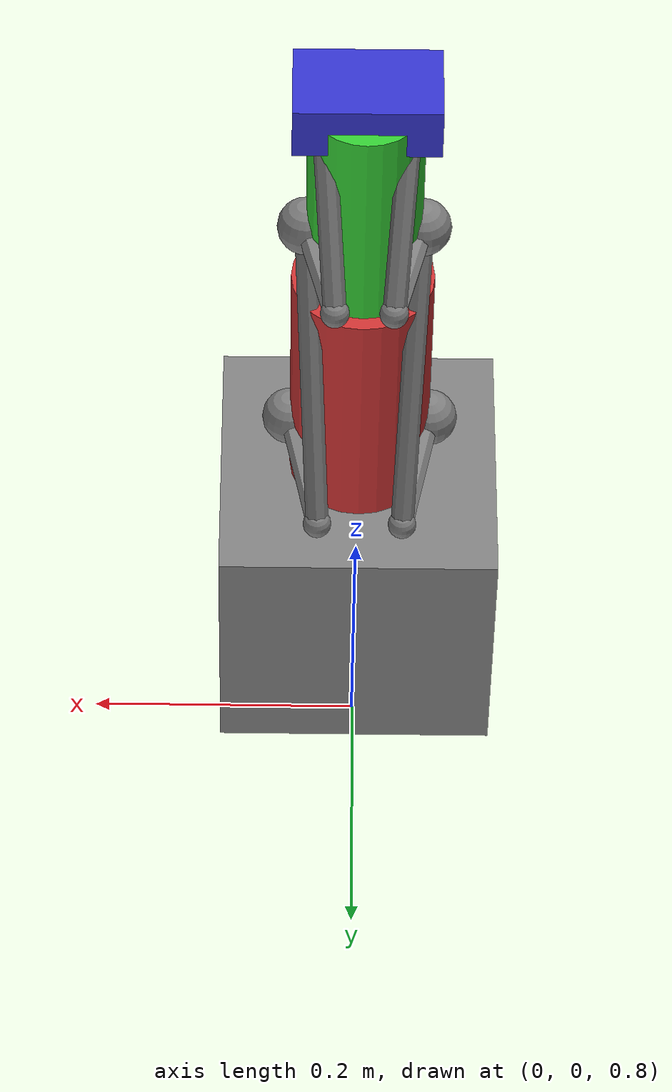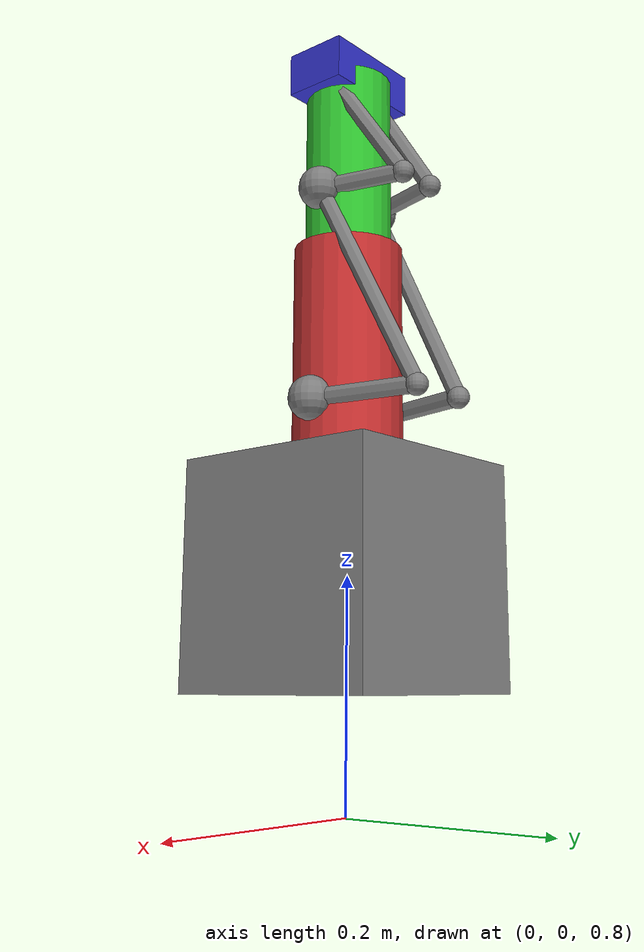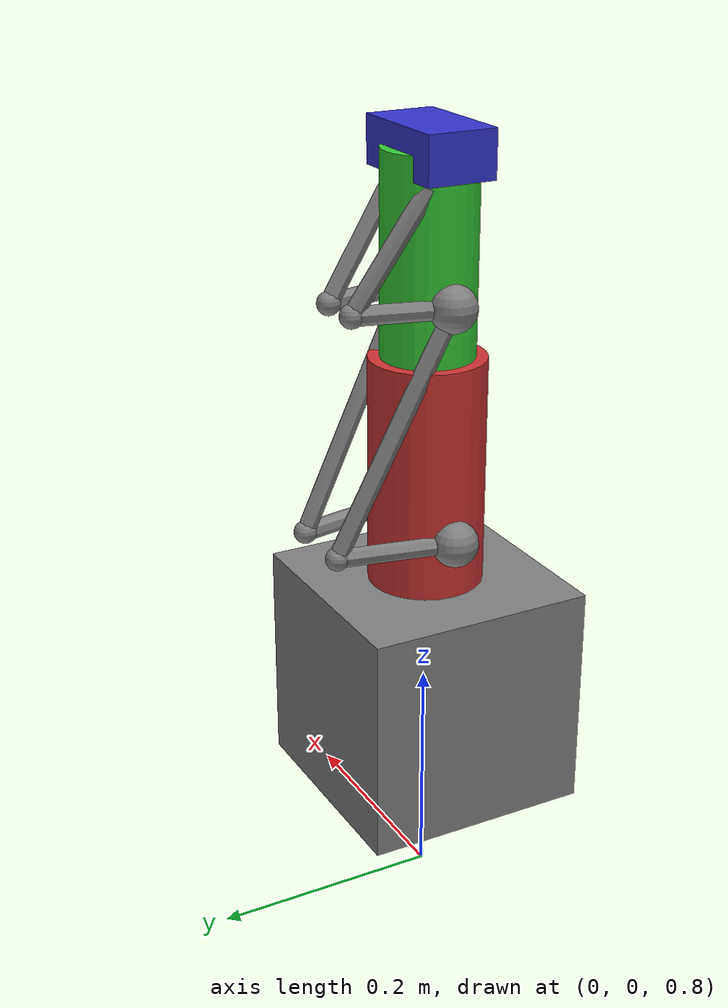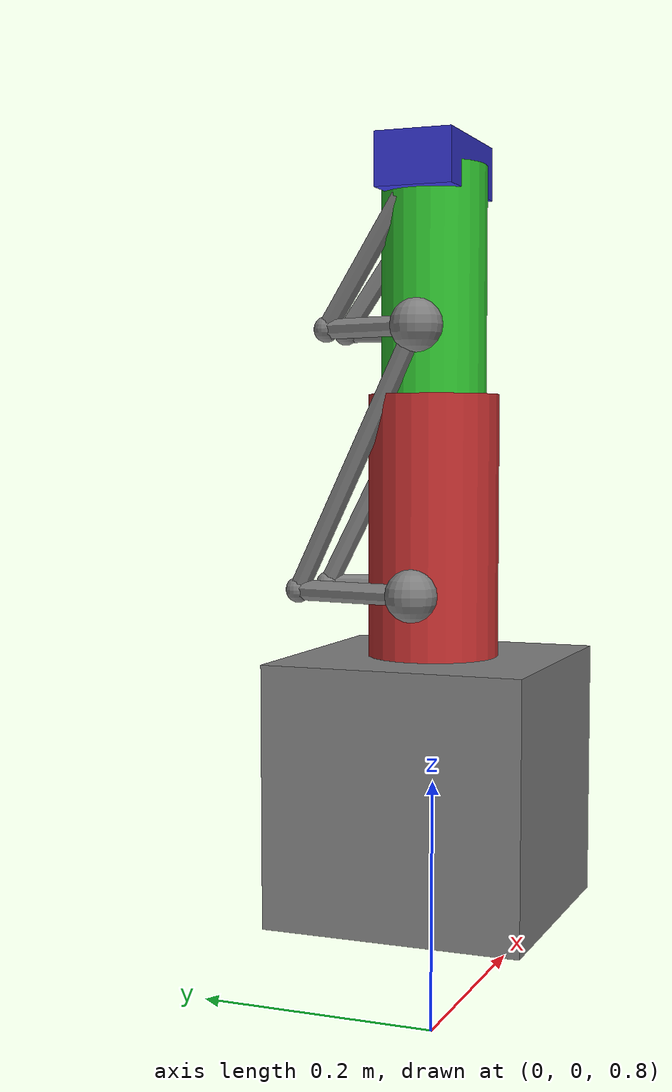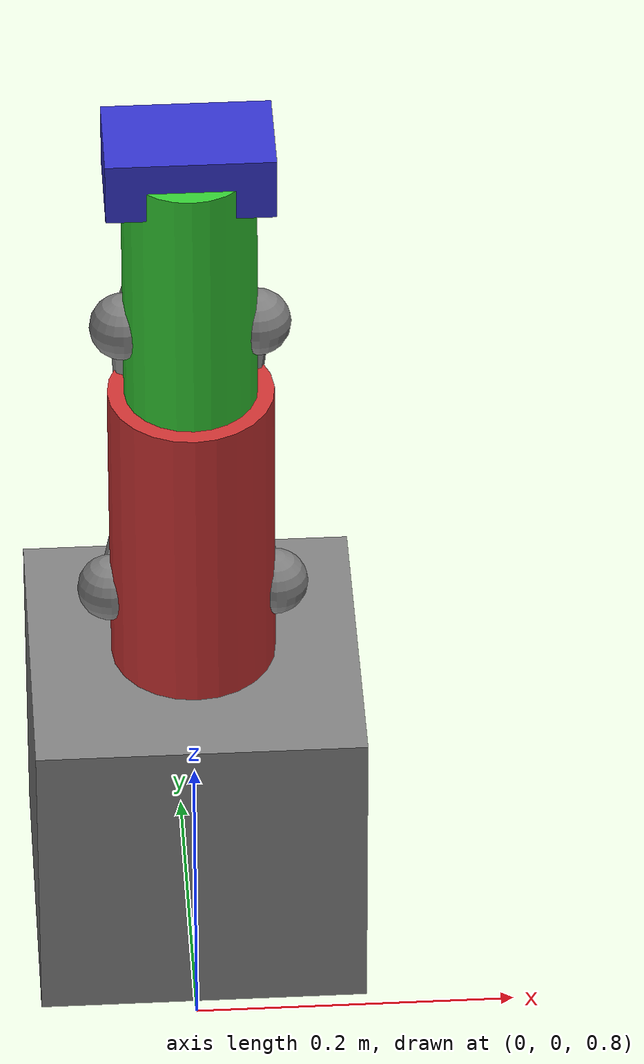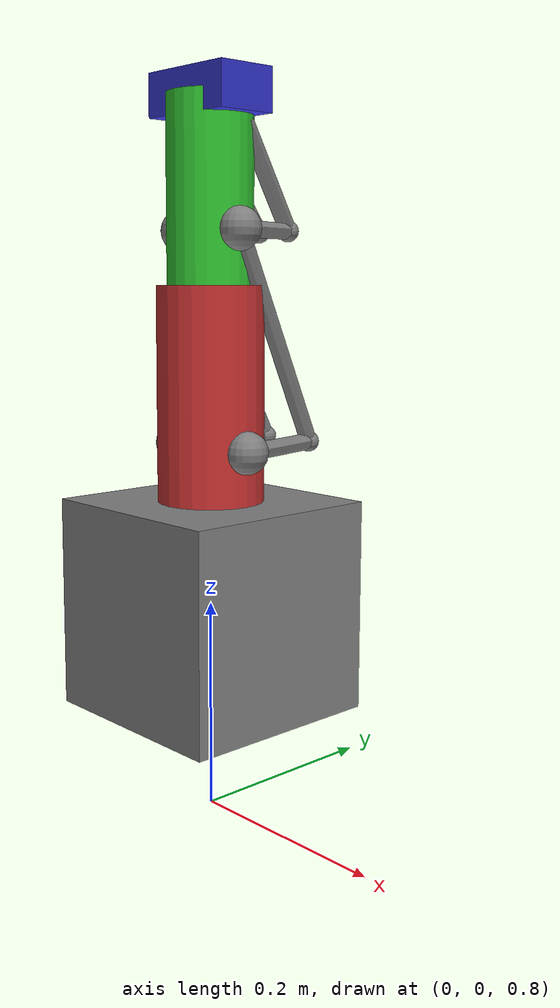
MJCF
<?xml version="1.0"?>
<!-- Full tendon-driven arm with proper tendon routing and mechanics -->
<mujoco model="tendon_arm_full">
  <option timestep="0.002" gravity="0 0 -9.81"/>

  <worldbody>
    <!-- Base -->
    <body name="base" pos="0 0 1">
      <geom type="box" size="0.1 0.1 0.1" rgba="0.5 0.5 0.5 1"/>

      <!-- Upper arm -->
      <body name="upper_arm" pos="0 0 0.15">
        <joint name="shoulder_pitch" type="hinge" axis="0 1 0" range="-3.14 3.14" damping="0.1"/>
        <joint name="shoulder_roll" type="hinge" axis="1 0 0" range="-1.57 1.57" damping="0.1"/>
        <geom type="cylinder" size="0.05 0.15" rgba="0.8 0.2 0.2 1"/>

        <!-- Tendon attachment sites -->
        <site name="flexor_origin_1" pos="0.05 0 0" size="0.02"/>
        <site name="extensor_origin_1" pos="-0.05 0 0" size="0.02"/>
        <site name="flexor_routing_1" pos="0.03 0.1 0" size="0.01"/>
        <site name="extensor_routing_1" pos="-0.03 0.1 0" size="0.01"/>

        <!-- Forearm -->
        <body name="forearm" pos="0 0 0.2">
          <joint name="elbow" type="hinge" axis="0 1 0" range="-3.14 0" damping="0.1"/>
          <geom type="cylinder" size="0.04 0.12" rgba="0.2 0.8 0.2 1"/>

          <!-- Tendon attachment sites -->
          <site name="flexor_insertion_1" pos="0.04 0 0" size="0.02"/>
          <site name="extensor_insertion_1" pos="-0.04 0 0" size="0.02"/>
          <site name="flexor_routing_2" pos="0.02 0.08 0" size="0.01"/>
          <site name="extensor_routing_2" pos="-0.02 0.08 0" size="0.01"/>

          <!-- Hand -->
          <body name="hand" pos="0 0 0.12">
            <joint name="wrist" type="hinge" axis="0 1 0" range="-1.57 1.57" damping="0.1"/>
            <geom type="box" size="0.05 0.03 0.02" rgba="0.2 0.2 0.8 1"/>

            <!-- Tendon attachment sites -->
            <site name="flexor_insertion_2" pos="0.03 0 0" size="0.02"/>
            <site name="extensor_insertion_2" pos="-0.03 0 0" size="0.02"/>
          </body>
        </body>
      </body>
    </body>
  </worldbody>

  <!-- Tendon system with proper routing -->
  <tendon>
    <!-- Shoulder flexor tendon (routed through pulley) -->
    <spatial name="shoulder_flexor" width="0.008">
      <site site="flexor_origin_1"/>
      <site site="flexor_routing_1"/>
      <site site="flexor_insertion_1"/>
    </spatial>

    <!-- Shoulder extensor tendon -->
    <spatial name="shoulder_extensor" width="0.008">
      <site site="extensor_origin_1"/>
      <site site="extensor_routing_1"/>
      <site site="extensor_insertion_1"/>
    </spatial>

    <!-- Elbow flexor tendon -->
    <spatial name="elbow_flexor" width="0.008">
      <site site="flexor_insertion_1"/>
      <site site="flexor_routing_2"/>
      <site site="flexor_insertion_2"/>
    </spatial>

    <!-- Elbow extensor tendon -->
    <spatial name="elbow_extensor" width="0.008">
      <site site="extensor_insertion_1"/>
      <site site="extensor_routing_2"/>
      <site site="extensor_insertion_2"/>
    </spatial>

    <!-- Wrist flexor tendon -->
    <spatial name="wrist_flexor" width="0.006">
      <site site="flexor_insertion_2"/>
      <site site="hand" pos="0.02 0 0"/>
    </spatial>

    <!-- Wrist extensor tendon -->
    <spatial name="wrist_extensor" width="0.006">
      <site site="extensor_insertion_2"/>
      <site site="hand" pos="-0.02 0 0"/>
    </spatial>
  </tendon>

  <!-- Tendon actuators -->
  <actuator>
    <!-- Tendon actuators with proper mechanics -->
    <general name="shoulder_flexor_act" tendon="shoulder_flexor"
             gear="1.0" ctrllimited="true" ctrlrange="0 1"
             gaintype="muscle" biastype="muscle"/>
    <general name="shoulder_extensor_act" tendon="shoulder_extensor"
             gear="1.0" ctrllimited="true" ctrlrange="0 1"
             gaintype="muscle" biastype="muscle"/>
    <general name="elbow_flexor_act" tendon="elbow_flexor"
             gear="1.0" ctrllimited="true" ctrlrange="0 1"
             gaintype="muscle" biastype="muscle"/>
    <general name="elbow_extensor_act" tendon="elbow_extensor"
             gear="1.0" ctrllimited="true" ctrlrange="0 1"
             gaintype="muscle" biastype="muscle"/>
    <general name="wrist_flexor_act" tendon="wrist_flexor"
             gear="1.0" ctrllimited="true" ctrlrange="0 1"
             gaintype="muscle" biastype="muscle"/>
    <general name="wrist_extensor_act" tendon="wrist_extensor"
             gear="1.0" ctrllimited="true" ctrlrange="0 1"
             gaintype="muscle" biastype="muscle"/>
  </actuator>

  <!-- Sensors for tendon state -->
  <sensor>
    <!-- Tendon length sensors -->
    <tendonlength name="shoulder_flexor_length" tendon="shoulder_flexor"/>
    <tendonlength name="shoulder_extensor_length" tendon="shoulder_extensor"/>
    <tendonlength name="elbow_flexor_length" tendon="elbow_flexor"/>
    <tendonlength name="elbow_extensor_length" tendon="elbow_extensor"/>
    <tendonlength name="wrist_flexor_length" tendon="wrist_flexor"/>
    <tendonlength name="wrist_extensor_length" tendon="wrist_extensor"/>

    <!-- Tendon velocity sensors -->
    <tendonvel name="shoulder_flexor_velocity" tendon="shoulder_flexor"/>
    <tendonvel name="shoulder_extensor_velocity" tendon="shoulder_extensor"/>
    <tendonvel name="elbow_flexor_velocity" tendon="elbow_flexor"/>
    <tendonvel name="elbow_extensor_velocity" tendon="elbow_extensor"/>
    <tendonvel name="wrist_flexor_velocity" tendon="wrist_flexor"/>
    <tendonvel name="wrist_extensor_velocity" tendon="wrist_extensor"/>

    <!-- Tendon tension sensors -->
    <tendonfrc name="shoulder_flexor_tension" tendon="shoulder_flexor"/>
    <tendonfrc name="shoulder_extensor_tension" tendon="shoulder_extensor"/>
    <tendonfrc name="elbow_flexor_tension" tendon="elbow_flexor"/>
    <tendonfrc name="elbow_extensor_tension" tendon="elbow_extensor"/>
    <tendonfrc name="wrist_flexor_tension" tendon="wrist_flexor"/>
    <tendonfrc name="wrist_extensor_tension" tendon="wrist_extensor"/>
  </sensor>
</mujoco>
